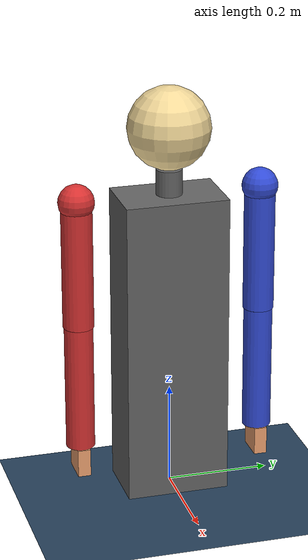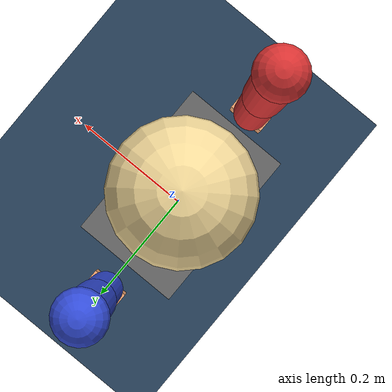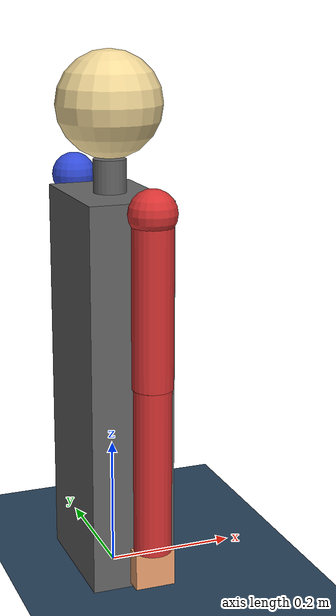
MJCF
<?xml version="1.0" encoding="UTF-8"?>
<mujoco model="ubp">
  <compiler angle="radian" coordinate="local" inertiafromgeom="false"/>
  <option timestep="0.002" gravity="0 0 -9.81" integrator="RK4"/>

  <default>
    <joint type="hinge" damping="0.1" frictionloss="0.05" armature="0.001"/>
    <!-- contype=0, conaffinity=0: 로봇 self-collision 비활성 (인접 링크가 닿아서
         constraint force가 actuator를 상쇄하는 문제 회피). 시각화 목적이므로
         contact dynamics는 불필요. -->
    <geom contype="0" conaffinity="0" friction="0.5 0.005 0.0001"/>
    <position kp="50" kv="2"/>
  </default>

  <asset>
    <texture type="skybox" builtin="gradient" rgb1=".4 .6 .8" rgb2="0 0 0" width="100" height="100"/>
    <texture name="grid" type="2d" builtin="checker" rgb1=".1 .2 .3" rgb2=".2 .3 .4" width="300" height="300"/>
    <material name="grid_mat" texture="grid" texrepeat="2 2" reflectance=".2"/>

    <material name="torso_mat" rgba="0.4 0.4 0.4 1"/>
    <material name="right_mat" rgba="0.85 0.20 0.20 1"/>
    <material name="left_mat"  rgba="0.20 0.30 0.85 1"/>
    <material name="head_mat"  rgba="0.95 0.85 0.60 1"/>
    <material name="hand_mat"  rgba="0.95 0.65 0.45 1"/>
  </asset>

  <worldbody>
    <light pos="1 0 2" dir="-1 0 -1" diffuse=".8 .8 .8"/>
    <light pos="-1 0 2" dir="1 0 -1" diffuse=".4 .4 .4"/>
    <geom name="floor" type="plane" size="2 2 0.1" pos="0 0 0" material="grid_mat"/>

    <!-- ===== Base / Torso (FIXED — UBP는 torso_yaw 없음) ===== -->
    <body name="base_link" pos="0 0 0">
      <geom name="torso_geom" type="box" size="0.065 0.10 0.30" pos="0 0 0.30"
            material="torso_mat" mass="3.0"/>
      <inertial pos="0 0 0.30" mass="3.0" diaginertia="0.05 0.05 0.05"/>

      <!-- ===== Head ===== -->
      <body name="neck_link" pos="0 0 0.60">
        <joint name="neck_yaw_joint" axis="0 0 1" range="-1.57 1.57"/>
        <geom name="neck_geom" type="cylinder" size="0.025 0.025" pos="0 0 0.025"
              material="torso_mat" mass="0.05"/>
        <inertial pos="0 0 0.025" mass="0.05" diaginertia="1e-4 1e-4 1e-4"/>

        <body name="head_link" pos="0 0 0.05">
          <joint name="head_pitch_joint" axis="0 -1 0" range="-1.0 1.0"/>
          <geom name="head_geom" type="sphere" size="0.08" pos="0 0 0.08"
                material="head_mat" mass="0.3"/>
          <inertial pos="0 0 0.08" mass="0.3" diaginertia="0.001 0.001 0.001"/>
        </body>
      </body>

      <!-- ===== Right Arm                                            ===== -->
      <body name="r_shoulder_pr_link" pos="0 -0.18 0.60">
        <joint name="r_shoulder_pitch_joint" axis="0 -1 0" range="-3.14 3.14"/>
        <geom name="r_sh_pr_geom" type="sphere" size="0.035" pos="0 0 0"
              material="right_mat" mass="0.05"/>
        <inertial pos="0 0 0" mass="0.05" diaginertia="1e-5 1e-5 1e-5"/>

        <body name="r_shoulder_ry_link" pos="0 0 0">
          <joint name="r_shoulder_roll_joint" axis="-1 0 0" range="-3.14 3.14"/>
          <inertial pos="0 0 0" mass="0.03" diaginertia="1e-5 1e-5 1e-5"/>

          <body name="r_upper_arm_link" pos="0 0 0">
            <joint name="r_shoulder_yaw_joint" axis="0 0 1" range="-3.14 3.14"/>
            <geom name="r_upper_arm_geom" type="cylinder" size="0.030 0.125"
                  pos="0 0 -0.125" material="right_mat" mass="0.20"/>
            <inertial pos="0 0 -0.125" mass="0.20" diaginertia="0.001 0.001 2e-4"/>

            <body name="r_elbow_link" pos="0 0 -0.25">
              <joint name="r_elbow_joint" axis="0 1 0" range="0.0 2.79"/>
              <geom name="r_elbow_geom" type="sphere" size="0.028" pos="0 0 0"
                    material="right_mat" mass="0.03"/>
              <inertial pos="0 0 0" mass="0.03" diaginertia="1e-5 1e-5 1e-5"/>

              <body name="r_forearm_link" pos="0 0 0">
                <joint name="r_wrist_yaw_joint" axis="0 0 1" range="-3.14 3.14"/>
                <geom name="r_forearm_geom" type="cylinder" size="0.028 0.125"
                      pos="0 0 -0.125" material="right_mat" mass="0.15"/>
                <inertial pos="0 0 -0.125" mass="0.15" diaginertia="8e-4 8e-4 1e-4"/>

                <body name="r_hand_link" pos="0 0 -0.25">
                  <joint name="r_wrist_pitch_joint" axis="0 1 0" range="-1.57 1.57"/>
                  <geom name="r_hand_geom" type="box" size="0.030 0.0125 0.0275"
                        pos="0 0 -0.0275" material="hand_mat" mass="0.10"/>
                  <inertial pos="0 0 -0.0275" mass="0.10" diaginertia="1e-4 1e-4 1e-4"/>
                </body>
              </body>
            </body>
          </body>
        </body>
      </body>

      <!-- ===== Left Arm (mirror)                                    ===== -->
      <body name="l_shoulder_pr_link" pos="0 0.18 0.60">
        <joint name="l_shoulder_pitch_joint" axis="0 -1 0" range="-3.14 3.14"/>
        <geom name="l_sh_pr_geom" type="sphere" size="0.035" pos="0 0 0"
              material="left_mat" mass="0.05"/>
        <inertial pos="0 0 0" mass="0.05" diaginertia="1e-5 1e-5 1e-5"/>

        <body name="l_shoulder_ry_link" pos="0 0 0">
          <joint name="l_shoulder_roll_joint" axis="1 0 0" range="-3.14 3.14"/>
          <inertial pos="0 0 0" mass="0.03" diaginertia="1e-5 1e-5 1e-5"/>

          <body name="l_upper_arm_link" pos="0 0 0">
            <joint name="l_shoulder_yaw_joint" axis="0 0 1" range="-3.14 3.14"/>
            <geom name="l_upper_arm_geom" type="cylinder" size="0.030 0.125"
                  pos="0 0 -0.125" material="left_mat" mass="0.20"/>
            <inertial pos="0 0 -0.125" mass="0.20" diaginertia="0.001 0.001 2e-4"/>

            <body name="l_elbow_link" pos="0 0 -0.25">
              <joint name="l_elbow_joint" axis="0 1 0" range="0.0 2.79"/>
              <geom name="l_elbow_geom" type="sphere" size="0.028" pos="0 0 0"
                    material="left_mat" mass="0.03"/>
              <inertial pos="0 0 0" mass="0.03" diaginertia="1e-5 1e-5 1e-5"/>

              <body name="l_forearm_link" pos="0 0 0">
                <joint name="l_wrist_yaw_joint" axis="0 0 1" range="-3.14 3.14"/>
                <geom name="l_forearm_geom" type="cylinder" size="0.028 0.125"
                      pos="0 0 -0.125" material="left_mat" mass="0.15"/>
                <inertial pos="0 0 -0.125" mass="0.15" diaginertia="8e-4 8e-4 1e-4"/>

                <body name="l_hand_link" pos="0 0 -0.25">
                  <joint name="l_wrist_pitch_joint" axis="0 1 0" range="-1.57 1.57"/>
                  <geom name="l_hand_geom" type="box" size="0.030 0.0125 0.0275"
                        pos="0 0 -0.0275" material="hand_mat" mass="0.10"/>
                  <inertial pos="0 0 -0.0275" mass="0.10" diaginertia="1e-4 1e-4 1e-4"/>
                </body>
              </body>
            </body>
          </body>
        </body>
      </body>

    </body>
  </worldbody>

  <!-- ===== Actuators (position-control, 14 DOF)
       ctrlrange 명시 필수! 없으면 MuJoCo가 [0,0]으로 default → ctrl이 0으로 clamp되어
       joint가 안 움직임. 각 joint의 limit과 동일하게 설정. -->
  <actuator>
    <position name="neck_yaw_act"          joint="neck_yaw_joint"          kp="50" forcerange="-6 6" ctrlrange="-1.57 1.57"/>
    <position name="head_pitch_act"        joint="head_pitch_joint"        kp="50" forcerange="-6 6" ctrlrange="-1.0 1.0"/>
    <position name="r_shoulder_pitch_act"  joint="r_shoulder_pitch_joint"  kp="80" forcerange="-6 6" ctrlrange="-3.14 3.14"/>
    <position name="r_shoulder_roll_act"   joint="r_shoulder_roll_joint"   kp="80" forcerange="-6 6" ctrlrange="-3.14 3.14"/>
    <position name="r_shoulder_yaw_act"    joint="r_shoulder_yaw_joint"    kp="50" forcerange="-6 6" ctrlrange="-3.14 3.14"/>
    <position name="r_elbow_act"           joint="r_elbow_joint"           kp="50" forcerange="-6 6" ctrlrange="0.0 2.79"/>
    <position name="r_wrist_yaw_act"       joint="r_wrist_yaw_joint"       kp="30" forcerange="-3 3" ctrlrange="-3.14 3.14"/>
    <position name="r_wrist_pitch_act"     joint="r_wrist_pitch_joint"     kp="30" forcerange="-3 3" ctrlrange="-1.57 1.57"/>
    <position name="l_shoulder_pitch_act"  joint="l_shoulder_pitch_joint"  kp="80" forcerange="-6 6" ctrlrange="-3.14 3.14"/>
    <position name="l_shoulder_roll_act"   joint="l_shoulder_roll_joint"   kp="80" forcerange="-6 6" ctrlrange="-3.14 3.14"/>
    <position name="l_shoulder_yaw_act"    joint="l_shoulder_yaw_joint"    kp="50" forcerange="-6 6" ctrlrange="-3.14 3.14"/>
    <position name="l_elbow_act"           joint="l_elbow_joint"           kp="50" forcerange="-6 6" ctrlrange="0.0 2.79"/>
    <position name="l_wrist_yaw_act"       joint="l_wrist_yaw_joint"       kp="30" forcerange="-3 3" ctrlrange="-3.14 3.14"/>
    <position name="l_wrist_pitch_act"     joint="l_wrist_pitch_joint"     kp="30" forcerange="-3 3" ctrlrange="-1.57 1.57"/>
  </actuator>

</mujoco>
